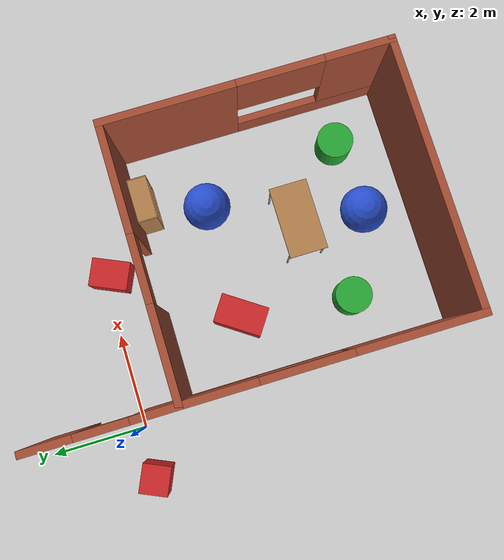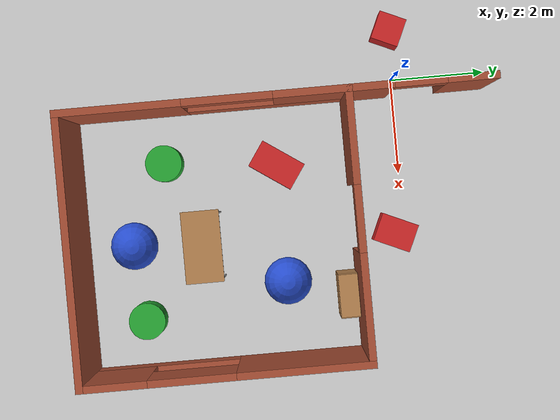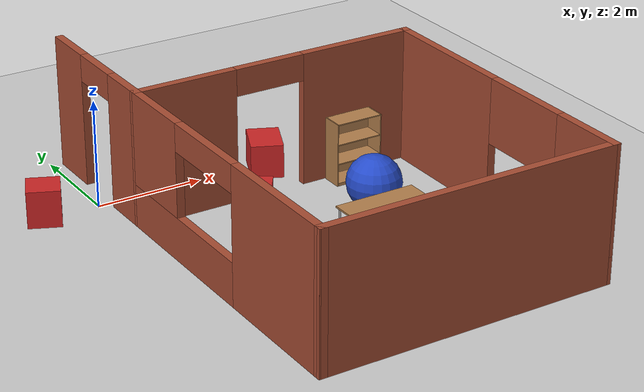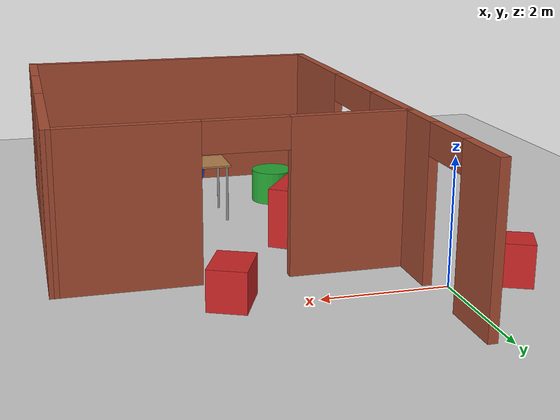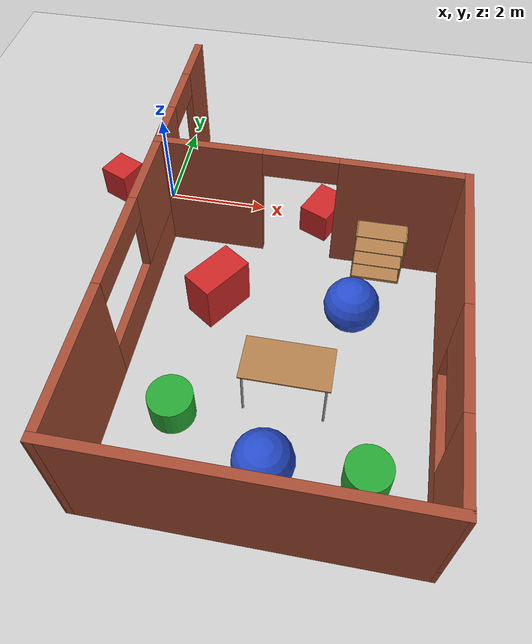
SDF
<sdf version="1.6">
 <world name="default">
  <model name="ground_plane">
   <static>1</static>
   <link name="link">
    <collision name="collision">
     <geometry><plane><normal>0 0 1</normal><size>100 100</size></plane></geometry>
     <surface>
      <contact><collide_bitmask>65535</collide_bitmask></contact>
      <friction><ode><mu>100</mu><mu2>50</mu2></ode></friction>
     </surface>
    </collision>
    <visual name="visual">
     <cast_shadows>0</cast_shadows>
     <geometry><plane><normal>0 0 1</normal><size>100 100</size></plane></geometry>
     <material>
      <script><uri>file://media/materials/scripts/gazebo.material</uri><name>Gazebo/Grey</name></script>
     </material>
    </visual>
   </link>
  </model>
  <model name="table_clone">
   <static>1</static>
   <link name="link">
    <collision name="surface">
     <pose>0 0 1 0 -0 0</pose>
     <geometry><box><size>1.5 0.8 0.03</size></box></geometry>
     <surface><friction><ode><mu>0.6</mu><mu2>0.6</mu2></ode></friction></surface>
    </collision>
    <visual name="visual1">
     <pose>0 0 1 0 -0 0</pose>
     <geometry><box><size>1.5 0.8 0.03</size></box></geometry>
     <material>
      <script><uri>file://media/materials/scripts/gazebo.material</uri><name>Gazebo/Wood</name></script>
     </material>
    </visual>
    <collision name="front_left_leg">
     <pose>0.68 0.38 0.5 0 -0 0</pose>
     <geometry><cylinder><radius>0.02</radius><length>1</length></cylinder></geometry>
    </collision>
    <visual name="front_left_leg">
     <pose>0.68 0.38 0.5 0 -0 0</pose>
     <geometry><cylinder><radius>0.02</radius><length>1</length></cylinder></geometry>
     <material>
      <script><uri>file://media/materials/scripts/gazebo.material</uri><name>Gazebo/Grey</name></script>
     </material>
    </visual>
    <collision name="front_right_leg">
     <pose>0.68 -0.38 0.5 0 -0 0</pose>
     <geometry><cylinder><radius>0.02</radius><length>1</length></cylinder></geometry>
    </collision>
    <visual name="front_right_leg">
     <pose>0.68 -0.38 0.5 0 -0 0</pose>
     <geometry><cylinder><radius>0.02</radius><length>1</length></cylinder></geometry>
     <material>
      <script><uri>file://media/materials/scripts/gazebo.material</uri><name>Gazebo/Grey</name></script>
     </material>
    </visual>
    <collision name="back_right_leg">
     <pose>-0.68 -0.38 0.5 0 -0 0</pose>
     <geometry><cylinder><radius>0.02</radius><length>1</length></cylinder></geometry>
    </collision>
    <visual name="back_right_leg">
     <pose>-0.68 -0.38 0.5 0 -0 0</pose>
     <geometry><cylinder><radius>0.02</radius><length>1</length></cylinder></geometry>
     <material>
      <script><uri>file://media/materials/scripts/gazebo.material</uri><name>Gazebo/Grey</name></script>
     </material>
    </visual>
    <collision name="back_left_leg">
     <pose>-0.68 0.38 0.5 0 -0 0</pose>
     <geometry><cylinder><radius>0.02</radius><length>1</length></cylinder></geometry>
    </collision>
    <visual name="back_left_leg">
     <pose>-0.68 0.38 0.5 0 -0 0</pose>
     <geometry><cylinder><radius>0.02</radius><length>1</length></cylinder></geometry>
     <material>
      <script><uri>file://media/materials/scripts/gazebo.material</uri><name>Gazebo/Grey</name></script>
     </material>
    </visual>
   </link>
   <pose>3.16978 -4.27284 0 0 -0 0</pose>
  </model>
  <model name="bookshelf_clone">
   <static>1</static>
   <link name="link">
    <inertial><mass>1</mass></inertial>
    <collision name="back">
     <pose>0 0.005 0.6 0 -0 0</pose>
     <geometry><box><size>0.9 0.01 1.2</size></box></geometry>
    </collision>
    <visual name="visual1">
     <pose>0 0.005 0.6 0 -0 0</pose>
     <geometry><box><size>0.9 0.01 1.2</size></box></geometry>
     <material>
      <script><uri>file://media/materials/scripts/gazebo.material</uri><name>Gazebo/Wood</name></script>
     </material>
    </visual>
    <collision name="left_side">
     <pose>0.45 -0.195 0.6 0 -0 0</pose>
     <geometry><box><size>0.02 0.4 1.2</size></box></geometry>
    </collision>
    <visual name="visual2">
     <pose>0.45 -0.195 0.6 0 -0 0</pose>
     <geometry><box><size>0.02 0.4 1.2</size></box></geometry>
     <material>
      <script><uri>file://media/materials/scripts/gazebo.material</uri><name>Gazebo/Wood</name></script>
     </material>
    </visual>
    <collision name="right_side">
     <pose>-0.45 -0.195 0.6 0 -0 0</pose>
     <geometry><box><size>0.02 0.4 1.2</size></box></geometry>
    </collision>
    <visual name="visual3">
     <pose>-0.45 -0.195 0.6 0 -0 0</pose>
     <geometry><box><size>0.02 0.4 1.2</size></box></geometry>
     <material>
      <script><uri>file://media/materials/scripts/gazebo.material</uri><name>Gazebo/Wood</name></script>
     </material>
    </visual>
    <collision name="bottom">
     <pose>0 -0.195 0.03 0 -0 0</pose>
     <geometry><box><size>0.88 0.4 0.06</size></box></geometry>
    </collision>
    <visual name="visual4">
     <pose>0 -0.195 0.03 0 -0 0</pose>
     <geometry><box><size>0.88 0.4 0.06</size></box></geometry>
     <material>
      <script><uri>file://media/materials/scripts/gazebo.material</uri><name>Gazebo/Wood</name></script>
     </material>
    </visual>
    <collision name="top">
     <pose>0 -0.195 1.19 0 -0 0</pose>
     <geometry><box><size>0.88 0.4 0.02</size></box></geometry>
    </collision>
    <visual name="visual5">
     <pose>0 -0.195 1.19 0 -0 0</pose>
     <geometry><box><size>0.88 0.4 0.02</size></box></geometry>
     <material>
      <script><uri>file://media/materials/scripts/gazebo.material</uri><name>Gazebo/Wood</name></script>
     </material>
    </visual>
    <collision name="low_shelf">
     <pose>0 -0.195 0.43 0 -0 0</pose>
     <geometry><box><size>0.88 0.4 0.02</size></box></geometry>
    </collision>
    <visual name="visual6">
     <pose>0 -0.195 0.43 0 -0 0</pose>
     <geometry><box><size>0.88 0.4 0.02</size></box></geometry>
     <material>
      <script><uri>file://media/materials/scripts/gazebo.material</uri><name>Gazebo/Wood</name></script>
     </material>
    </visual>
    <collision name="high_shelf">
     <pose>0 -0.195 0.8 0 -0 0</pose>
     <geometry><box><size>0.88 0.4 0.02</size></box></geometry>
    </collision>
    <visual name="visual7">
     <pose>0 -0.195 0.8 0 -0 0</pose>
     <geometry><box><size>0.88 0.4 0.02</size></box></geometry>
     <material>
      <script><uri>file://media/materials/scripts/gazebo.material</uri><name>Gazebo/Wood</name></script>
     </material>
    </visual>
   </link>
   <pose>4.43049 -1.13981 0 0 -0 4e-06</pose>
  </model>
  <model name="AssignmentBuilding_0">
   <link name="Wall_44">
    <pose>0.967092 0.829751 0 0 -0 1.57048</pose>
    <inertial>
     <mass>1</mass>
     <inertia><ixx>1</ixx><ixy>0</ixy><ixz>0</ixz><iyy>1</iyy><iyz>0</iyz><izz>1</izz></inertia>
    </inertial>
    <visual name="Wall_44_Visual_1">
     <pose>1.00948 0 1.25 0 -0 0</pose>
     <geometry><box><size>1.02321 0.15 2.5</size></box></geometry>
     <material>
      <script><uri>file://media/materials/scripts/gazebo.material</uri><name>Gazebo/Bricks</name></script>
      <ambient>1 1 1 1</ambient>
      <shader type="pixel"><normal_map>__default__</normal_map></shader>
      <diffuse>0.7 0.7 0.7 1</diffuse>
      <specular>0.01 0.01 0.01 1</specular>
      <emissive>0 0 0 1</emissive>
     </material>
     <meta><layer>0</layer></meta>
    </visual>
    <visual name="Wall_44_Visual_0">
     <pose>-1.03005 0 1.25 0 -0 0</pose>
     <geometry><box><size>0.982074 0.15 2.5</size></box></geometry>
     <material>
      <script><uri>file://media/materials/scripts/gazebo.material</uri><name>Gazebo/Bricks</name></script>
      <ambient>1 1 1 1</ambient>
      <shader type="pixel"><normal_map>__default__</normal_map></shader>
      <diffuse>1 1 1 1</diffuse>
      <specular>0.2 0.2 0.2 1</specular>
      <emissive>0 0 0 1</emissive>
     </material>
     <meta><layer>0</layer></meta>
    </visual>
    <visual name="Wall_44_Visual_2">
     <pose>-0.020568 0 2.25 0 -0 0</pose>
     <geometry><box><size>1.03689 0.15 0.5</size></box></geometry>
     <material>
      <script><uri>file://media/materials/scripts/gazebo.material</uri><name>Gazebo/Bricks</name></script>
      <ambient>1 1 1 1</ambient>
      <shader type="pixel"><normal_map>__default__</normal_map></shader>
      <diffuse>0.7 0.7 0.7 1</diffuse>
      <specular>0.01 0.01 0.01 1</specular>
      <emissive>0 0 0 1</emissive>
     </material>
     <meta><layer>0</layer></meta>
    </visual>
    <collision name="Wall_44_Collision_0">
     <pose>-1.03005 0 1.25 0 -0 0</pose>
     <geometry><box><size>0.982074 0.15 2.5</size></box></geometry>
     <surface>
      <friction>
       <ode><mu>1</mu><mu2>1</mu2><fdir1>0 0 0</fdir1><slip1>0</slip1><slip2>0</slip2></ode>
       <torsional>
        <coefficient>1</coefficient>
        <patch_radius>0</patch_radius>
        <surface_radius>0</surface_radius>
        <use_patch_radius>1</use_patch_radius>
        <ode><slip>0</slip></ode>
       </torsional>
      </friction>
      <bounce><restitution_coefficient>0</restitution_coefficient><threshold>1e+06</threshold></bounce>
      <contact>
       <collide_without_contact>0</collide_without_contact>
       <collide_without_contact_bitmask>1</collide_without_contact_bitmask>
       <collide_bitmask>1</collide_bitmask>
       <ode>
        <soft_cfm>0</soft_cfm>
        <soft_erp>0.2</soft_erp>
        <kp>1e+13</kp>
        <kd>1</kd>
        <max_vel>0.01</max_vel>
        <min_depth>0</min_depth>
       </ode>
       <bullet>
        <split_impulse>1</split_impulse>
        <split_impulse_penetration_threshold>-0.01</split_impulse_penetration_threshold>
        <soft_cfm>0</soft_cfm>
        <soft_erp>0.2</soft_erp>
        <kp>1e+13</kp>
        <kd>1</kd>
       </bullet>
      </contact>
     </surface>
    </collision>
    <collision name="Wall_44_Collision_1">
     <pose>1.00948 0 1.25 0 -0 0</pose>
     <geometry><box><size>1.02321 0.15 2.5</size></box></geometry>
     <surface>
      <friction>
       <ode><mu>1</mu><mu2>1</mu2><fdir1>0 0 0</fdir1><slip1>0</slip1><slip2>0</slip2></ode>
       <torsional>
        <coefficient>1</coefficient>
        <patch_radius>0</patch_radius>
        <surface_radius>0</surface_radius>
        <use_patch_radius>1</use_patch_radius>
        <ode><slip>0</slip></ode>
       </torsional>
      </friction>
      <bounce><restitution_coefficient>0</restitution_coefficient><threshold>1e+06</threshold></bounce>
      <contact>
       <collide_without_contact>0</collide_without_contact>
       <collide_without_contact_bitmask>1</collide_without_contact_bitmask>
       <collide_bitmask>1</collide_bitmask>
       <ode>
        <soft_cfm>0</soft_cfm>
        <soft_erp>0.2</soft_erp>
        <kp>1e+13</kp>
        <kd>1</kd>
        <max_vel>0.01</max_vel>
        <min_depth>0</min_depth>
       </ode>
       <bullet>
        <split_impulse>1</split_impulse>
        <split_impulse_penetration_threshold>-0.01</split_impulse_penetration_threshold>
        <soft_cfm>0</soft_cfm>
        <soft_erp>0.2</soft_erp>
        <kp>1e+13</kp>
        <kd>1</kd>
       </bullet>
      </contact>
     </surface>
    </collision>
    <collision name="Wall_44_Collision_2">
     <pose>-0.020568 0 2.25 0 -0 0</pose>
     <geometry><box><size>1.03689 0.15 0.5</size></box></geometry>
     <surface>
      <friction>
       <ode><mu>1</mu><mu2>1</mu2><fdir1>0 0 0</fdir1><slip1>0</slip1><slip2>0</slip2></ode>
       <torsional>
        <coefficient>1</coefficient>
        <patch_radius>0</patch_radius>
        <surface_radius>0</surface_radius>
        <use_patch_radius>1</use_patch_radius>
        <ode><slip>0</slip></ode>
       </torsional>
      </friction>
      <bounce><restitution_coefficient>0</restitution_coefficient><threshold>1e+06</threshold></bounce>
      <contact>
       <collide_without_contact>0</collide_without_contact>
       <collide_without_contact_bitmask>1</collide_without_contact_bitmask>
       <collide_bitmask>1</collide_bitmask>
       <ode>
        <soft_cfm>0</soft_cfm>
        <soft_erp>0.2</soft_erp>
        <kp>1e+13</kp>
        <kd>1</kd>
        <max_vel>0.01</max_vel>
        <min_depth>0</min_depth>
       </ode>
       <bullet>
        <split_impulse>1</split_impulse>
        <split_impulse_penetration_threshold>-0.01</split_impulse_penetration_threshold>
        <soft_cfm>0</soft_cfm>
        <soft_erp>0.2</soft_erp>
        <kp>1e+13</kp>
        <kd>1</kd>
       </bullet>
      </contact>
     </surface>
    </collision>
   </link>
   <link name="Wall_52">
    <pose>0.961018 -3.49604 0 0 -0 1.56885</pose>
    <inertial>
     <mass>1</mass>
     <inertia><ixx>1</ixx><ixy>0</ixy><ixz>0</ixz><iyy>1</iyy><iyz>0</iyz><izz>1</izz></inertia>
    </inertial>
    <visual name="Wall_52_Visual_0">
     <pose>-1.68236 0 1.25 0 -0 0</pose>
     <geometry><box><size>2.5449 0.15 2.5</size></box></geometry>
     <material>
      <script><uri>file://media/materials/scripts/gazebo.material</uri><name>Gazebo/Bricks</name></script>
      <ambient>1 1 1 1</ambient>
      <shader type="pixel"><normal_map>__default__</normal_map></shader>
      <diffuse>1 1 1 1</diffuse>
      <specular>0.2 0.2 0.2 1</specular>
      <emissive>0 0 0 1</emissive>
     </material>
     <meta><layer>0</layer></meta>
    </visual>
    <visual name="Wall_52_Visual_1">
     <pose>1.27245 0 0.4 0 -0 0</pose>
     <geometry><box><size>3.36472 0.15 0.8</size></box></geometry>
     <material>
      <script><uri>file://media/materials/scripts/gazebo.material</uri><name>Gazebo/Bricks</name></script>
      <ambient>1 1 1 1</ambient>
      <shader type="pixel"><normal_map>__default__</normal_map></shader>
      <diffuse>0.7 0.7 0.7 1</diffuse>
      <specular>0.01 0.01 0.01 1</specular>
      <emissive>0 0 0 1</emissive>
     </material>
     <meta><layer>0</layer></meta>
    </visual>
    <visual name="Wall_52_Visual_2">
     <pose>2.17235 0 1.65 0 -0 0</pose>
     <geometry><box><size>1.56492 0.15 1.7</size></box></geometry>
     <material>
      <script><uri>file://media/materials/scripts/gazebo.material</uri><name>Gazebo/Bricks</name></script>
      <ambient>1 1 1 1</ambient>
      <shader type="pixel"><normal_map>__default__</normal_map></shader>
      <diffuse>0.7 0.7 0.7 1</diffuse>
      <specular>0.01 0.01 0.01 1</specular>
      <emissive>0 0 0 1</emissive>
     </material>
     <meta><layer>0</layer></meta>
    </visual>
    <visual name="Wall_52_Visual_3">
     <pose>0.489991 0 2.25 0 -0 0</pose>
     <geometry><box><size>1.79981 0.15 0.5</size></box></geometry>
     <material>
      <script><uri>file://media/materials/scripts/gazebo.material</uri><name>Gazebo/Bricks</name></script>
      <ambient>1 1 1 1</ambient>
      <shader type="pixel"><normal_map>__default__</normal_map></shader>
      <diffuse>0.7 0.7 0.7 1</diffuse>
      <specular>0.01 0.01 0.01 1</specular>
      <emissive>0 0 0 1</emissive>
     </material>
     <meta><layer>0</layer></meta>
    </visual>
    <collision name="Wall_52_Collision_3">
     <pose>0.489991 0 2.25 0 -0 0</pose>
     <geometry><box><size>1.79981 0.15 0.5</size></box></geometry>
     <surface>
      <friction>
       <ode><mu>1</mu><mu2>1</mu2><fdir1>0 0 0</fdir1><slip1>0</slip1><slip2>0</slip2></ode>
       <torsional>
        <coefficient>1</coefficient>
        <patch_radius>0</patch_radius>
        <surface_radius>0</surface_radius>
        <use_patch_radius>1</use_patch_radius>
        <ode><slip>0</slip></ode>
       </torsional>
      </friction>
      <bounce><restitution_coefficient>0</restitution_coefficient><threshold>1e+06</threshold></bounce>
      <contact>
       <collide_without_contact>0</collide_without_contact>
       <collide_without_contact_bitmask>1</collide_without_contact_bitmask>
       <collide_bitmask>1</collide_bitmask>
       <ode>
        <soft_cfm>0</soft_cfm>
        <soft_erp>0.2</soft_erp>
        <kp>1e+13</kp>
        <kd>1</kd>
        <max_vel>0.01</max_vel>
        <min_depth>0</min_depth>
       </ode>
       <bullet>
        <split_impulse>1</split_impulse>
        <split_impulse_penetration_threshold>-0.01</split_impulse_penetration_threshold>
        <soft_cfm>0</soft_cfm>
        <soft_erp>0.2</soft_erp>
        <kp>1e+13</kp>
        <kd>1</kd>
       </bullet>
      </contact>
     </surface>
    </collision>
    <collision name="Wall_52_Collision_0">
     <pose>-1.68236 0 1.25 0 -0 0</pose>
     <geometry><box><size>2.5449 0.15 2.5</size></box></geometry>
     <surface>
      <friction>
       <ode><mu>1</mu><mu2>1</mu2><fdir1>0 0 0</fdir1><slip1>0</slip1><slip2>0</slip2></ode>
       <torsional>
        <coefficient>1</coefficient>
        <patch_radius>0</patch_radius>
        <surface_radius>0</surface_radius>
        <use_patch_radius>1</use_patch_radius>
        <ode><slip>0</slip></ode>
       </torsional>
      </friction>
      <bounce><restitution_coefficient>0</restitution_coefficient><threshold>1e+06</threshold></bounce>
      <contact>
       <collide_without_contact>0</collide_without_contact>
       <collide_without_contact_bitmask>1</collide_without_contact_bitmask>
       <collide_bitmask>1</collide_bitmask>
       <ode>
        <soft_cfm>0</soft_cfm>
        <soft_erp>0.2</soft_erp>
        <kp>1e+13</kp>
        <kd>1</kd>
        <max_vel>0.01</max_vel>
        <min_depth>0</min_depth>
       </ode>
       <bullet>
        <split_impulse>1</split_impulse>
        <split_impulse_penetration_threshold>-0.01</split_impulse_penetration_threshold>
        <soft_cfm>0</soft_cfm>
        <soft_erp>0.2</soft_erp>
        <kp>1e+13</kp>
        <kd>1</kd>
       </bullet>
      </contact>
     </surface>
    </collision>
    <collision name="Wall_52_Collision_1">
     <pose>1.27245 0 0.4 0 -0 0</pose>
     <geometry><box><size>3.36472 0.15 0.8</size></box></geometry>
     <surface>
      <friction>
       <ode><mu>1</mu><mu2>1</mu2><fdir1>0 0 0</fdir1><slip1>0</slip1><slip2>0</slip2></ode>
       <torsional>
        <coefficient>1</coefficient>
        <patch_radius>0</patch_radius>
        <surface_radius>0</surface_radius>
        <use_patch_radius>1</use_patch_radius>
        <ode><slip>0</slip></ode>
       </torsional>
      </friction>
      <bounce><restitution_coefficient>0</restitution_coefficient><threshold>1e+06</threshold></bounce>
      <contact>
       <collide_without_contact>0</collide_without_contact>
       <collide_without_contact_bitmask>1</collide_without_contact_bitmask>
       <collide_bitmask>1</collide_bitmask>
       <ode>
        <soft_cfm>0</soft_cfm>
        <soft_erp>0.2</soft_erp>
        <kp>1e+13</kp>
        <kd>1</kd>
        <max_vel>0.01</max_vel>
        <min_depth>0</min_depth>
       </ode>
       <bullet>
        <split_impulse>1</split_impulse>
        <split_impulse_penetration_threshold>-0.01</split_impulse_penetration_threshold>
        <soft_cfm>0</soft_cfm>
        <soft_erp>0.2</soft_erp>
        <kp>1e+13</kp>
        <kd>1</kd>
       </bullet>
      </contact>
     </surface>
    </collision>
    <collision name="Wall_52_Collision_2">
     <pose>2.17235 0 1.65 0 -0 0</pose>
     <geometry><box><size>1.56492 0.15 1.7</size></box></geometry>
     <surface>
      <friction>
       <ode><mu>1</mu><mu2>1</mu2><fdir1>0 0 0</fdir1><slip1>0</slip1><slip2>0</slip2></ode>
       <torsional>
        <coefficient>1</coefficient>
        <patch_radius>0</patch_radius>
        <surface_radius>0</surface_radius>
        <use_patch_radius>1</use_patch_radius>
        <ode><slip>0</slip></ode>
       </torsional>
      </friction>
      <bounce><restitution_coefficient>0</restitution_coefficient><threshold>1e+06</threshold></bounce>
      <contact>
       <collide_without_contact>0</collide_without_contact>
       <collide_without_contact_bitmask>1</collide_without_contact_bitmask>
       <collide_bitmask>1</collide_bitmask>
       <ode>
        <soft_cfm>0</soft_cfm>
        <soft_erp>0.2</soft_erp>
        <kp>1e+13</kp>
        <kd>1</kd>
        <max_vel>0.01</max_vel>
        <min_depth>0</min_depth>
       </ode>
       <bullet>
        <split_impulse>1</split_impulse>
        <split_impulse_penetration_threshold>-0.01</split_impulse_penetration_threshold>
        <soft_cfm>0</soft_cfm>
        <soft_erp>0.2</soft_erp>
        <kp>1e+13</kp>
        <kd>1</kd>
       </bullet>
      </contact>
     </surface>
    </collision>
   </link>
   <link name="Wall_54">
    <pose>3.66041 -6.37575 0 0 -0 0</pose>
    <inertial>
     <mass>1</mass>
     <inertia><ixx>1</ixx><ixy>0</ixy><ixz>0</ixz><iyy>1</iyy><iyz>0</iyz><izz>1</izz></inertia>
    </inertial>
    <visual name="Wall_54_Visual">
     <pose>0 0 1.25 0 -0 0</pose>
     <geometry><box><size>5.56 0.15 2.5</size></box></geometry>
     <material>
      <script><uri>file://media/materials/scripts/gazebo.material</uri><name>Gazebo/Bricks</name></script>
      <ambient>1 1 1 1</ambient>
      <shader type="pixel"><normal_map>__default__</normal_map></shader>
      <diffuse>1 1 1 1</diffuse>
      <specular>0.2 0.2 0.2 1</specular>
      <emissive>0 0 0 1</emissive>
     </material>
     <meta><layer>0</layer></meta>
    </visual>
    <collision name="Wall_54_Collision">
     <pose>0 0 1.25 0 -0 0</pose>
     <geometry><box><size>5.56 0.15 2.5</size></box></geometry>
     <surface>
      <friction>
       <ode><mu>1</mu><mu2>1</mu2><fdir1>0 0 0</fdir1><slip1>0</slip1><slip2>0</slip2></ode>
       <torsional>
        <coefficient>1</coefficient>
        <patch_radius>0</patch_radius>
        <surface_radius>0</surface_radius>
        <use_patch_radius>1</use_patch_radius>
        <ode><slip>0</slip></ode>
       </torsional>
      </friction>
      <bounce><restitution_coefficient>0</restitution_coefficient><threshold>1e+06</threshold></bounce>
      <contact>
       <collide_without_contact>0</collide_without_contact>
       <collide_without_contact_bitmask>1</collide_without_contact_bitmask>
       <collide_bitmask>1</collide_bitmask>
       <ode>
        <soft_cfm>0</soft_cfm>
        <soft_erp>0.2</soft_erp>
        <kp>1e+13</kp>
        <kd>1</kd>
        <max_vel>0.01</max_vel>
        <min_depth>0</min_depth>
       </ode>
       <bullet>
        <split_impulse>1</split_impulse>
        <split_impulse_penetration_threshold>-0.01</split_impulse_penetration_threshold>
        <soft_cfm>0</soft_cfm>
        <soft_erp>0.2</soft_erp>
        <kp>1e+13</kp>
        <kd>1</kd>
       </bullet>
      </contact>
     </surface>
    </collision>
   </link>
   <link name="Wall_56">
    <pose>6.37382 -3.49634 0 0 0 -1.57372</pose>
    <inertial>
     <mass>1</mass>
     <inertia><ixx>1</ixx><ixy>0</ixy><ixz>0</ixz><iyy>1</iyy><iyz>0</iyz><izz>1</izz></inertia>
    </inertial>
    <visual name="Wall_56_Visual_0">
     <pose>-1.57926 0 1.25 0 -0 0</pose>
     <geometry><box><size>2.75031 0.15 2.5</size></box></geometry>
     <material>
      <script><uri>file://media/materials/scripts/gazebo.material</uri><name>Gazebo/Bricks</name></script>
      <ambient>1 1 1 1</ambient>
      <shader type="pixel"><normal_map>__default__</normal_map></shader>
      <diffuse>1 1 1 1</diffuse>
      <specular>0.2 0.2 0.2 1</specular>
      <emissive>0 0 0 1</emissive>
     </material>
     <meta><layer>0</layer></meta>
    </visual>
    <visual name="Wall_56_Visual_1">
     <pose>1.37515 0 0.25 0 -0 0</pose>
     <geometry><box><size>3.15853 0.15 0.5</size></box></geometry>
     <material>
      <script><uri>file://media/materials/scripts/gazebo.material</uri><name>Gazebo/Bricks</name></script>
      <ambient>1 1 1 1</ambient>
      <shader type="pixel"><normal_map>__default__</normal_map></shader>
      <diffuse>0.7 0.7 0.7 1</diffuse>
      <specular>0.01 0.01 0.01 1</specular>
      <emissive>0 0 0 1</emissive>
     </material>
     <meta><layer>0</layer></meta>
    </visual>
    <visual name="Wall_56_Visual_2">
     <pose>2.25132 0 1.5 0 -0 0</pose>
     <geometry><box><size>1.40619 0.15 2</size></box></geometry>
     <material>
      <script><uri>file://media/materials/scripts/gazebo.material</uri><name>Gazebo/Bricks</name></script>
      <ambient>1 1 1 1</ambient>
      <shader type="pixel"><normal_map>__default__</normal_map></shader>
      <diffuse>0.7 0.7 0.7 1</diffuse>
      <specular>0.01 0.01 0.01 1</specular>
      <emissive>0 0 0 1</emissive>
     </material>
     <meta><layer>0</layer></meta>
    </visual>
    <visual name="Wall_56_Visual_3">
     <pose>0.67206 0 1.9 0 -0 0</pose>
     <geometry><box><size>1.75233 0.15 1.2</size></box></geometry>
     <material>
      <script><uri>file://media/materials/scripts/gazebo.material</uri><name>Gazebo/Bricks</name></script>
      <ambient>1 1 1 1</ambient>
      <shader type="pixel"><normal_map>__default__</normal_map></shader>
      <diffuse>0.7 0.7 0.7 1</diffuse>
      <specular>0.01 0.01 0.01 1</specular>
      <emissive>0 0 0 1</emissive>
     </material>
     <meta><layer>0</layer></meta>
    </visual>
    <collision name="Wall_56_Collision_0">
     <pose>-1.57926 0 1.25 0 -0 0</pose>
     <geometry><box><size>2.75031 0.15 2.5</size></box></geometry>
     <surface>
      <friction>
       <ode><mu>1</mu><mu2>1</mu2><fdir1>0 0 0</fdir1><slip1>0</slip1><slip2>0</slip2></ode>
       <torsional>
        <coefficient>1</coefficient>
        <patch_radius>0</patch_radius>
        <surface_radius>0</surface_radius>
        <use_patch_radius>1</use_patch_radius>
        <ode><slip>0</slip></ode>
       </torsional>
      </friction>
      <bounce><restitution_coefficient>0</restitution_coefficient><threshold>1e+06</threshold></bounce>
      <contact>
       <collide_without_contact>0</collide_without_contact>
       <collide_without_contact_bitmask>1</collide_without_contact_bitmask>
       <collide_bitmask>1</collide_bitmask>
       <ode>
        <soft_cfm>0</soft_cfm>
        <soft_erp>0.2</soft_erp>
        <kp>1e+13</kp>
        <kd>1</kd>
        <max_vel>0.01</max_vel>
        <min_depth>0</min_depth>
       </ode>
       <bullet>
        <split_impulse>1</split_impulse>
        <split_impulse_penetration_threshold>-0.01</split_impulse_penetration_threshold>
        <soft_cfm>0</soft_cfm>
        <soft_erp>0.2</soft_erp>
        <kp>1e+13</kp>
        <kd>1</kd>
       </bullet>
      </contact>
     </surface>
    </collision>
    <collision name="Wall_56_Collision_1">
     <pose>1.37515 0 0.25 0 -0 0</pose>
     <geometry><box><size>3.15853 0.15 0.5</size></box></geometry>
     <surface>
      <friction>
       <ode><mu>1</mu><mu2>1</mu2><fdir1>0 0 0</fdir1><slip1>0</slip1><slip2>0</slip2></ode>
       <torsional>
        <coefficient>1</coefficient>
        <patch_radius>0</patch_radius>
        <surface_radius>0</surface_radius>
        <use_patch_radius>1</use_patch_radius>
        <ode><slip>0</slip></ode>
       </torsional>
      </friction>
      <bounce><restitution_coefficient>0</restitution_coefficient><threshold>1e+06</threshold></bounce>
      <contact>
       <collide_without_contact>0</collide_without_contact>
       <collide_without_contact_bitmask>1</collide_without_contact_bitmask>
       <collide_bitmask>1</collide_bitmask>
       <ode>
        <soft_cfm>0</soft_cfm>
        <soft_erp>0.2</soft_erp>
        <kp>1e+13</kp>
        <kd>1</kd>
        <max_vel>0.01</max_vel>
        <min_depth>0</min_depth>
       </ode>
       <bullet>
        <split_impulse>1</split_impulse>
        <split_impulse_penetration_threshold>-0.01</split_impulse_penetration_threshold>
        <soft_cfm>0</soft_cfm>
        <soft_erp>0.2</soft_erp>
        <kp>1e+13</kp>
        <kd>1</kd>
       </bullet>
      </contact>
     </surface>
    </collision>
    <collision name="Wall_56_Collision_2">
     <pose>2.25132 0 1.5 0 -0 0</pose>
     <geometry><box><size>1.40619 0.15 2</size></box></geometry>
     <surface>
      <friction>
       <ode><mu>1</mu><mu2>1</mu2><fdir1>0 0 0</fdir1><slip1>0</slip1><slip2>0</slip2></ode>
       <torsional>
        <coefficient>1</coefficient>
        <patch_radius>0</patch_radius>
        <surface_radius>0</surface_radius>
        <use_patch_radius>1</use_patch_radius>
        <ode><slip>0</slip></ode>
       </torsional>
      </friction>
      <bounce><restitution_coefficient>0</restitution_coefficient><threshold>1e+06</threshold></bounce>
      <contact>
       <collide_without_contact>0</collide_without_contact>
       <collide_without_contact_bitmask>1</collide_without_contact_bitmask>
       <collide_bitmask>1</collide_bitmask>
       <ode>
        <soft_cfm>0</soft_cfm>
        <soft_erp>0.2</soft_erp>
        <kp>1e+13</kp>
        <kd>1</kd>
        <max_vel>0.01</max_vel>
        <min_depth>0</min_depth>
       </ode>
       <bullet>
        <split_impulse>1</split_impulse>
        <split_impulse_penetration_threshold>-0.01</split_impulse_penetration_threshold>
        <soft_cfm>0</soft_cfm>
        <soft_erp>0.2</soft_erp>
        <kp>1e+13</kp>
        <kd>1</kd>
       </bullet>
      </contact>
     </surface>
    </collision>
    <collision name="Wall_56_Collision_3">
     <pose>0.67206 0 1.9 0 -0 0</pose>
     <geometry><box><size>1.75233 0.15 1.2</size></box></geometry>
     <surface>
      <friction>
       <ode><mu>1</mu><mu2>1</mu2><fdir1>0 0 0</fdir1><slip1>0</slip1><slip2>0</slip2></ode>
       <torsional>
        <coefficient>1</coefficient>
        <patch_radius>0</patch_radius>
        <surface_radius>0</surface_radius>
        <use_patch_radius>1</use_patch_radius>
        <ode><slip>0</slip></ode>
       </torsional>
      </friction>
      <bounce><restitution_coefficient>0</restitution_coefficient><threshold>1e+06</threshold></bounce>
      <contact>
       <collide_without_contact>0</collide_without_contact>
       <collide_without_contact_bitmask>1</collide_without_contact_bitmask>
       <collide_bitmask>1</collide_bitmask>
       <ode>
        <soft_cfm>0</soft_cfm>
        <soft_erp>0.2</soft_erp>
        <kp>1e+13</kp>
        <kd>1</kd>
        <max_vel>0.01</max_vel>
        <min_depth>0</min_depth>
       </ode>
       <bullet>
        <split_impulse>1</split_impulse>
        <split_impulse_penetration_threshold>-0.01</split_impulse_penetration_threshold>
        <soft_cfm>0</soft_cfm>
        <soft_erp>0.2</soft_erp>
        <kp>1e+13</kp>
        <kd>1</kd>
       </bullet>
      </contact>
     </surface>
    </collision>
   </link>
   <link name="Wall_58">
    <pose>3.67443 -0.616637 0 0 -0 3.14148</pose>
    <inertial>
     <mass>1</mass>
     <inertia><ixx>1</ixx><ixy>0</ixy><ixz>0</ixz><iyy>1</iyy><iyz>0</iyz><izz>1</izz></inertia>
    </inertial>
    <visual name="Wall_58_Visual_0">
     <pose>-1.65056 0 1.25 0 -0 0</pose>
     <geometry><box><size>2.26448 0.15 2.5</size></box></geometry>
     <material>
      <script><uri>file://media/materials/scripts/gazebo.material</uri><name>Gazebo/Bricks</name></script>
      <ambient>1 1 1 1</ambient>
      <shader type="pixel"><normal_map>__default__</normal_map></shader>
      <diffuse>1 1 1 1</diffuse>
      <specular>0.2 0.2 0.2 1</specular>
      <emissive>0 0 0 1</emissive>
     </material>
     <meta><layer>0</layer></meta>
    </visual>
    <visual name="Wall_58_Visual_1">
     <pose>1.80125 0 1.25 0 -0 0</pose>
     <geometry><box><size>1.96311 0.15 2.5</size></box></geometry>
     <material>
      <script><uri>file://media/materials/scripts/gazebo.material</uri><name>Gazebo/Bricks</name></script>
      <ambient>1 1 1 1</ambient>
      <shader type="pixel"><normal_map>__default__</normal_map></shader>
      <diffuse>0.7 0.7 0.7 1</diffuse>
      <specular>0.01 0.01 0.01 1</specular>
      <emissive>0 0 0 1</emissive>
     </material>
     <meta><layer>0</layer></meta>
    </visual>
    <visual name="Wall_58_Visual_2">
     <pose>0.150683 0 2.25 0 -0 0</pose>
     <geometry><box><size>1.33801 0.15 0.5</size></box></geometry>
     <material>
      <script><uri>file://media/materials/scripts/gazebo.material</uri><name>Gazebo/Bricks</name></script>
      <ambient>1 1 1 1</ambient>
      <shader type="pixel"><normal_map>__default__</normal_map></shader>
      <diffuse>0.7 0.7 0.7 1</diffuse>
      <specular>0.01 0.01 0.01 1</specular>
      <emissive>0 0 0 1</emissive>
     </material>
     <meta><layer>0</layer></meta>
    </visual>
    <collision name="Wall_58_Collision_0">
     <pose>-1.65056 0 1.25 0 -0 0</pose>
     <geometry><box><size>2.26448 0.15 2.5</size></box></geometry>
     <surface>
      <friction>
       <ode><mu>1</mu><mu2>1</mu2><fdir1>0 0 0</fdir1><slip1>0</slip1><slip2>0</slip2></ode>
       <torsional>
        <coefficient>1</coefficient>
        <patch_radius>0</patch_radius>
        <surface_radius>0</surface_radius>
        <use_patch_radius>1</use_patch_radius>
        <ode><slip>0</slip></ode>
       </torsional>
      </friction>
      <bounce><restitution_coefficient>0</restitution_coefficient><threshold>1e+06</threshold></bounce>
      <contact>
       <collide_without_contact>0</collide_without_contact>
       <collide_without_contact_bitmask>1</collide_without_contact_bitmask>
       <collide_bitmask>1</collide_bitmask>
       <ode>
        <soft_cfm>0</soft_cfm>
        <soft_erp>0.2</soft_erp>
        <kp>1e+13</kp>
        <kd>1</kd>
        <max_vel>0.01</max_vel>
        <min_depth>0</min_depth>
       </ode>
       <bullet>
        <split_impulse>1</split_impulse>
        <split_impulse_penetration_threshold>-0.01</split_impulse_penetration_threshold>
        <soft_cfm>0</soft_cfm>
        <soft_erp>0.2</soft_erp>
        <kp>1e+13</kp>
        <kd>1</kd>
       </bullet>
      </contact>
     </surface>
    </collision>
    <collision name="Wall_58_Collision_1">
     <pose>1.80125 0 1.25 0 -0 0</pose>
     <geometry><box><size>1.96311 0.15 2.5</size></box></geometry>
     <surface>
      <friction>
       <ode><mu>1</mu><mu2>1</mu2><fdir1>0 0 0</fdir1><slip1>0</slip1><slip2>0</slip2></ode>
       <torsional>
        <coefficient>1</coefficient>
        <patch_radius>0</patch_radius>
        <surface_radius>0</surface_radius>
        <use_patch_radius>1</use_patch_radius>
        <ode><slip>0</slip></ode>
       </torsional>
      </friction>
      <bounce><restitution_coefficient>0</restitution_coefficient><threshold>1e+06</threshold></bounce>
      <contact>
       <collide_without_contact>0</collide_without_contact>
       <collide_without_contact_bitmask>1</collide_without_contact_bitmask>
       <collide_bitmask>1</collide_bitmask>
       <ode>
        <soft_cfm>0</soft_cfm>
        <soft_erp>0.2</soft_erp>
        <kp>1e+13</kp>
        <kd>1</kd>
        <max_vel>0.01</max_vel>
        <min_depth>0</min_depth>
       </ode>
       <bullet>
        <split_impulse>1</split_impulse>
        <split_impulse_penetration_threshold>-0.01</split_impulse_penetration_threshold>
        <soft_cfm>0</soft_cfm>
        <soft_erp>0.2</soft_erp>
        <kp>1e+13</kp>
        <kd>1</kd>
       </bullet>
      </contact>
     </surface>
    </collision>
    <collision name="Wall_58_Collision_2">
     <pose>0.150683 0 2.25 0 -0 0</pose>
     <geometry><box><size>1.33801 0.15 0.5</size></box></geometry>
     <surface>
      <friction>
       <ode><mu>1</mu><mu2>1</mu2><fdir1>0 0 0</fdir1><slip1>0</slip1><slip2>0</slip2></ode>
       <torsional>
        <coefficient>1</coefficient>
        <patch_radius>0</patch_radius>
        <surface_radius>0</surface_radius>
        <use_patch_radius>1</use_patch_radius>
        <ode><slip>0</slip></ode>
       </torsional>
      </friction>
      <bounce><restitution_coefficient>0</restitution_coefficient><threshold>1e+06</threshold></bounce>
      <contact>
       <collide_without_contact>0</collide_without_contact>
       <collide_without_contact_bitmask>1</collide_without_contact_bitmask>
       <collide_bitmask>1</collide_bitmask>
       <ode>
        <soft_cfm>0</soft_cfm>
        <soft_erp>0.2</soft_erp>
        <kp>1e+13</kp>
        <kd>1</kd>
        <max_vel>0.01</max_vel>
        <min_depth>0</min_depth>
       </ode>
       <bullet>
        <split_impulse>1</split_impulse>
        <split_impulse_penetration_threshold>-0.01</split_impulse_penetration_threshold>
        <soft_cfm>0</soft_cfm>
        <soft_erp>0.2</soft_erp>
        <kp>1e+13</kp>
        <kd>1</kd>
       </bullet>
      </contact>
     </surface>
    </collision>
   </link>
   <static>1</static>
   <pose>-0.68157 -0.42903 0 0 -0 0</pose>
  </model>
  <model name="unit_box_6">
   <link name="link">
    <inertial>
     <mass>1</mass>
     <inertia>
      <ixx>0.166667</ixx>
      <ixy>0</ixy>
      <ixz>0</ixz>
      <iyy>0.166667</iyy>
      <iyz>0</iyz>
      <izz>0.166667</izz>
     </inertia>
    </inertial>
    <visual name="visual">
     <geometry><box><size>1 0.598607 1</size></box></geometry>
     <material>
      <script><name>Gazebo/Red</name><uri>file://media/materials/scripts/gazebo.material</uri></script>
      <shader type="pixel"><normal_map>__default__</normal_map></shader>
      <ambient>1 0 0 1</ambient>
      <diffuse>1 0 0 1</diffuse>
      <specular>0.1 0.1 0.1 1</specular>
      <emissive>0 0 0 1</emissive>
     </material>
    </visual>
    <collision name="collision">
     <geometry><box><size>1 0.598607 1</size></box></geometry>
     <surface>
      <friction>
       <ode><mu>1</mu><mu2>1</mu2><fdir1>0 0 0</fdir1><slip1>0</slip1><slip2>0</slip2></ode>
       <torsional>
        <coefficient>1</coefficient>
        <patch_radius>0</patch_radius>
        <surface_radius>0</surface_radius>
        <use_patch_radius>1</use_patch_radius>
        <ode><slip>0</slip></ode>
       </torsional>
      </friction>
      <bounce><restitution_coefficient>0</restitution_coefficient><threshold>1e+06</threshold></bounce>
      <contact>
       <collide_without_contact>0</collide_without_contact>
       <collide_without_contact_bitmask>1</collide_without_contact_bitmask>
       <collide_bitmask>1</collide_bitmask>
       <ode>
        <soft_cfm>0</soft_cfm>
        <soft_erp>0.2</soft_erp>
        <kp>1e+13</kp>
        <kd>1</kd>
        <max_vel>0.01</max_vel>
        <min_depth>0</min_depth>
       </ode>
       <bullet>
        <split_impulse>1</split_impulse>
        <split_impulse_penetration_threshold>-0.01</split_impulse_penetration_threshold>
        <soft_cfm>0</soft_cfm>
        <soft_erp>0.2</soft_erp>
        <kp>1e+13</kp>
        <kd>1</kd>
       </bullet>
      </contact>
     </surface>
    </collision>
   </link>
   <static>0</static>
   <pose>1.61932 -2.58894 0.499997 0 -7e-06 0.96897</pose>
  </model>
  <model name="unit_box_3">
   <link name="link">
    <inertial>
     <mass>1</mass>
     <inertia>
      <ixx>0.166667</ixx>
      <ixy>0</ixy>
      <ixz>0</ixz>
      <iyy>0.166667</iyy>
      <iyz>0</iyz>
      <izz>0.166667</izz>
     </inertia>
    </inertial>
    <visual name="visual">
     <geometry><box><size>0.597837 0.587717 0.68729</size></box></geometry>
     <material>
      <script><name>Gazebo/Red</name><uri>file://media/materials/scripts/gazebo.material</uri></script>
      <shader type="pixel"><normal_map>__default__</normal_map></shader>
      <ambient>1 0 0 1</ambient>
      <diffuse>1 0 0 1</diffuse>
      <specular>0.1 0.1 0.1 1</specular>
      <emissive>0 0 0 1</emissive>
     </material>
    </visual>
    <collision name="collision">
     <geometry><box><size>0.597837 0.587717 0.68729</size></box></geometry>
     <surface>
      <friction>
       <ode><mu>1</mu><mu2>1</mu2><fdir1>0 0 0</fdir1><slip1>0</slip1><slip2>0</slip2></ode>
       <torsional>
        <coefficient>1</coefficient>
        <patch_radius>0</patch_radius>
        <surface_radius>0</surface_radius>
        <use_patch_radius>1</use_patch_radius>
        <ode><slip>0</slip></ode>
       </torsional>
      </friction>
      <bounce><restitution_coefficient>0</restitution_coefficient><threshold>1e+06</threshold></bounce>
      <contact>
       <collide_without_contact>0</collide_without_contact>
       <collide_without_contact_bitmask>1</collide_without_contact_bitmask>
       <collide_bitmask>1</collide_bitmask>
       <ode>
        <soft_cfm>0</soft_cfm>
        <soft_erp>0.2</soft_erp>
        <kp>1e+13</kp>
        <kd>1</kd>
        <max_vel>0.01</max_vel>
        <min_depth>0</min_depth>
       </ode>
       <bullet>
        <split_impulse>1</split_impulse>
        <split_impulse_penetration_threshold>-0.01</split_impulse_penetration_threshold>
        <soft_cfm>0</soft_cfm>
        <soft_erp>0.2</soft_erp>
        <kp>1e+13</kp>
        <kd>1</kd>
       </bullet>
      </contact>
     </surface>
    </collision>
   </link>
   <static>0</static>
   <pose>-1.02704 0.007936 0.343645 0 0 -0.420452</pose>
  </model>
  <model name="unit_box_3_clone_0">
   <link name="link">
    <inertial>
     <mass>1</mass>
     <inertia>
      <ixx>0.166667</ixx>
      <ixy>0</ixy>
      <ixz>0</ixz>
      <iyy>0.166667</iyy>
      <iyz>0</iyz>
      <izz>0.166667</izz>
     </inertia>
    </inertial>
    <visual name="visual">
     <geometry><box><size>0.597837 0.799608 0.635867</size></box></geometry>
     <material>
      <script><name>Gazebo/Red</name><uri>file://media/materials/scripts/gazebo.material</uri></script>
      <shader type="pixel"><normal_map>__default__</normal_map></shader>
      <ambient>1 0 0 1</ambient>
      <diffuse>1 0 0 1</diffuse>
      <specular>0.1 0.1 0.1 1</specular>
      <emissive>0 0 0 1</emissive>
     </material>
    </visual>
    <collision name="collision">
     <geometry><box><size>0.597837 0.799608 0.635867</size></box></geometry>
     <surface>
      <friction>
       <ode><mu>1</mu><mu2>1</mu2><fdir1>0 0 0</fdir1><slip1>0</slip1><slip2>0</slip2></ode>
       <torsional>
        <coefficient>1</coefficient>
        <patch_radius>0</patch_radius>
        <surface_radius>0</surface_radius>
        <use_patch_radius>1</use_patch_radius>
        <ode><slip>0</slip></ode>
       </torsional>
      </friction>
      <bounce><restitution_coefficient>0</restitution_coefficient><threshold>1e+06</threshold></bounce>
      <contact>
       <collide_without_contact>0</collide_without_contact>
       <collide_without_contact_bitmask>1</collide_without_contact_bitmask>
       <collide_bitmask>1</collide_bitmask>
       <ode>
        <soft_cfm>0</soft_cfm>
        <soft_erp>0.2</soft_erp>
        <kp>1e+13</kp>
        <kd>1</kd>
        <max_vel>0.01</max_vel>
        <min_depth>0</min_depth>
       </ode>
       <bullet>
        <split_impulse>1</split_impulse>
        <split_impulse_penetration_threshold>-0.01</split_impulse_penetration_threshold>
        <soft_cfm>0</soft_cfm>
        <soft_erp>0.2</soft_erp>
        <kp>1e+13</kp>
        <kd>1</kd>
       </bullet>
      </contact>
     </surface>
    </collision>
   </link>
   <static>0</static>
   <pose>3.25092 -0.211884 0.317934 0 0 -0.420452</pose>
  </model>
  <model name="unit_sphere_0_0_clone_0">
   <link name="link">
    <inertial>
     <mass>1</mass>
     <inertia><ixx>0.1</ixx><ixy>0</ixy><ixz>0</ixz><iyy>0.1</iyy><iyz>0</iyz><izz>0.1</izz></inertia>
    </inertial>
    <visual name="visual">
     <geometry><sphere><radius>0.5</radius></sphere></geometry>
     <material>
      <script><name>Gazebo/Blue</name><uri>file://media/materials/scripts/gazebo.material</uri></script>
      <shader type="pixel"><normal_map>__default__</normal_map></shader>
      <ambient>0 0 1 1</ambient>
      <diffuse>0 0 1 1</diffuse>
      <specular>0.1 0.1 0.1 1</specular>
      <emissive>0 0 0 1</emissive>
     </material>
    </visual>
    <collision name="collision">
     <geometry><sphere><radius>0.5</radius></sphere></geometry>
     <surface>
      <friction>
       <ode><mu>1</mu><mu2>1</mu2><fdir1>0 0 0</fdir1><slip1>0</slip1><slip2>0</slip2></ode>
       <torsional>
        <coefficient>1</coefficient>
        <patch_radius>0</patch_radius>
        <surface_radius>0</surface_radius>
        <use_patch_radius>1</use_patch_radius>
        <ode><slip>0</slip></ode>
       </torsional>
      </friction>
      <bounce><restitution_coefficient>0</restitution_coefficient><threshold>1e+06</threshold></bounce>
      <contact>
       <collide_without_contact>0</collide_without_contact>
       <collide_without_contact_bitmask>1</collide_without_contact_bitmask>
       <collide_bitmask>1</collide_bitmask>
       <ode>
        <soft_cfm>0</soft_cfm>
        <soft_erp>0.2</soft_erp>
        <kp>1e+13</kp>
        <kd>1</kd>
        <max_vel>0.01</max_vel>
        <min_depth>0</min_depth>
       </ode>
       <bullet>
        <split_impulse>1</split_impulse>
        <split_impulse_penetration_threshold>-0.01</split_impulse_penetration_threshold>
        <soft_cfm>0</soft_cfm>
        <soft_erp>0.2</soft_erp>
        <kp>1e+13</kp>
        <kd>1</kd>
       </bullet>
      </contact>
     </surface>
    </collision>
   </link>
   <static>0</static>
   <pose>4.06094 -2.5614 0.5 0 -0 0</pose>
  </model>
  <model name="unit_sphere_0_0_clone_1">
   <link name="link">
    <inertial>
     <mass>1</mass>
     <inertia><ixx>0.1</ixx><ixy>0</ixy><ixz>0</ixz><iyy>0.1</iyy><iyz>0</iyz><izz>0.1</izz></inertia>
    </inertial>
    <visual name="visual">
     <geometry><sphere><radius>0.5</radius></sphere></geometry>
     <material>
      <script><name>Gazebo/Blue</name><uri>file://media/materials/scripts/gazebo.material</uri></script>
      <shader type="pixel"><normal_map>__default__</normal_map></shader>
      <ambient>0 0 1 1</ambient>
      <diffuse>0 0 1 1</diffuse>
      <specular>0.1 0.1 0.1 1</specular>
      <emissive>0 0 0 1</emissive>
     </material>
    </visual>
    <collision name="collision">
     <geometry><sphere><radius>0.5</radius></sphere></geometry>
     <surface>
      <friction>
       <ode><mu>1</mu><mu2>1</mu2><fdir1>0 0 0</fdir1><slip1>0</slip1><slip2>0</slip2></ode>
       <torsional>
        <coefficient>1</coefficient>
        <patch_radius>0</patch_radius>
        <surface_radius>0</surface_radius>
        <use_patch_radius>1</use_patch_radius>
        <ode><slip>0</slip></ode>
       </torsional>
      </friction>
      <bounce><restitution_coefficient>0</restitution_coefficient><threshold>1e+06</threshold></bounce>
      <contact>
       <collide_without_contact>0</collide_without_contact>
       <collide_without_contact_bitmask>1</collide_without_contact_bitmask>
       <collide_bitmask>1</collide_bitmask>
       <ode>
        <soft_cfm>0</soft_cfm>
        <soft_erp>0.2</soft_erp>
        <kp>1e+13</kp>
        <kd>1</kd>
        <max_vel>0.01</max_vel>
        <min_depth>0</min_depth>
       </ode>
       <bullet>
        <split_impulse>1</split_impulse>
        <split_impulse_penetration_threshold>-0.01</split_impulse_penetration_threshold>
        <soft_cfm>0</soft_cfm>
        <soft_erp>0.2</soft_erp>
        <kp>1e+13</kp>
        <kd>1</kd>
       </bullet>
      </contact>
     </surface>
    </collision>
   </link>
   <static>0</static>
   <pose>3.04317 -5.72785 0.5 0 -0 0</pose>
  </model>
  <model name="unit_cylinder_0_clone_1">
   <link name="link">
    <inertial>
     <mass>1</mass>
     <inertia><ixx>0.145833</ixx><ixy>0</ixy><ixz>0</ixz><iyy>0.145833</iyy><iyz>0</iyz><izz>0.125</izz></inertia>
    </inertial>
    <visual name="visual">
     <geometry><cylinder><radius>0.386388</radius><length>0.59847</length></cylinder></geometry>
     <material>
      <script><name>Gazebo/Green</name><uri>file://media/materials/scripts/gazebo.material</uri></script>
      <shader type="pixel"><normal_map>__default__</normal_map></shader>
      <ambient>0 1 0 1</ambient>
      <diffuse>0 1 0 1</diffuse>
      <specular>0.1 0.1 0.1 1</specular>
      <emissive>0 0 0 1</emissive>
     </material>
    </visual>
    <collision name="collision">
     <geometry><cylinder><radius>0.386388</radius><length>0.59847</length></cylinder></geometry>
     <surface>
      <friction>
       <ode><mu>1</mu><mu2>1</mu2><fdir1>0 0 0</fdir1><slip1>0</slip1><slip2>0</slip2></ode>
       <torsional>
        <coefficient>1</coefficient>
        <patch_radius>0</patch_radius>
        <surface_radius>0</surface_radius>
        <use_patch_radius>1</use_patch_radius>
        <ode><slip>0</slip></ode>
       </torsional>
      </friction>
      <bounce><restitution_coefficient>0</restitution_coefficient><threshold>1e+06</threshold></bounce>
      <contact>
       <collide_without_contact>0</collide_without_contact>
       <collide_without_contact_bitmask>1</collide_without_contact_bitmask>
       <collide_bitmask>1</collide_bitmask>
       <ode>
        <soft_cfm>0</soft_cfm>
        <soft_erp>0.2</soft_erp>
        <kp>1e+13</kp>
        <kd>1</kd>
        <max_vel>0.01</max_vel>
        <min_depth>0</min_depth>
       </ode>
       <bullet>
        <split_impulse>1</split_impulse>
        <split_impulse_penetration_threshold>-0.01</split_impulse_penetration_threshold>
        <soft_cfm>0</soft_cfm>
        <soft_erp>0.2</soft_erp>
        <kp>1e+13</kp>
        <kd>1</kd>
       </bullet>
      </contact>
     </surface>
    </collision>
   </link>
   <static>0</static>
   <pose>4.6457 -5.59555 0.299235 0 0 -1.03302</pose>
  </model>
  <model name="unit_cylinder_0_clone_2">
   <link name="link">
    <inertial>
     <mass>1</mass>
     <inertia><ixx>0.145833</ixx><ixy>0</ixy><ixz>0</ixz><iyy>0.145833</iyy><iyz>0</iyz><izz>0.125</izz></inertia>
    </inertial>
    <visual name="visual">
     <geometry><cylinder><radius>0.386388</radius><length>0.59847</length></cylinder></geometry>
     <material>
      <script><name>Gazebo/Green</name><uri>file://media/materials/scripts/gazebo.material</uri></script>
      <shader type="pixel"><normal_map>__default__</normal_map></shader>
      <ambient>0 1 0 1</ambient>
      <diffuse>0 1 0 1</diffuse>
      <specular>0.1 0.1 0.1 1</specular>
      <emissive>0 0 0 1</emissive>
     </material>
    </visual>
    <collision name="collision">
     <geometry><cylinder><radius>0.386388</radius><length>0.59847</length></cylinder></geometry>
     <surface>
      <friction>
       <ode><mu>1</mu><mu2>1</mu2><fdir1>0 0 0</fdir1><slip1>0</slip1><slip2>0</slip2></ode>
       <torsional>
        <coefficient>1</coefficient>
        <patch_radius>0</patch_radius>
        <surface_radius>0</surface_radius>
        <use_patch_radius>1</use_patch_radius>
        <ode><slip>0</slip></ode>
       </torsional>
      </friction>
      <bounce><restitution_coefficient>0</restitution_coefficient><threshold>1e+06</threshold></bounce>
      <contact>
       <collide_without_contact>0</collide_without_contact>
       <collide_without_contact_bitmask>1</collide_without_contact_bitmask>
       <collide_bitmask>1</collide_bitmask>
       <ode>
        <soft_cfm>0</soft_cfm>
        <soft_erp>0.2</soft_erp>
        <kp>1e+13</kp>
        <kd>1</kd>
        <max_vel>0.01</max_vel>
        <min_depth>0</min_depth>
       </ode>
       <bullet>
        <split_impulse>1</split_impulse>
        <split_impulse_penetration_threshold>-0.01</split_impulse_penetration_threshold>
        <soft_cfm>0</soft_cfm>
        <soft_erp>0.2</soft_erp>
        <kp>1e+13</kp>
        <kd>1</kd>
       </bullet>
      </contact>
     </surface>
    </collision>
   </link>
   <static>0</static>
   <pose>1.36517 -4.95705 0.299235 0 0 -1.03302</pose>
  </model>
 </world>
</sdf>
